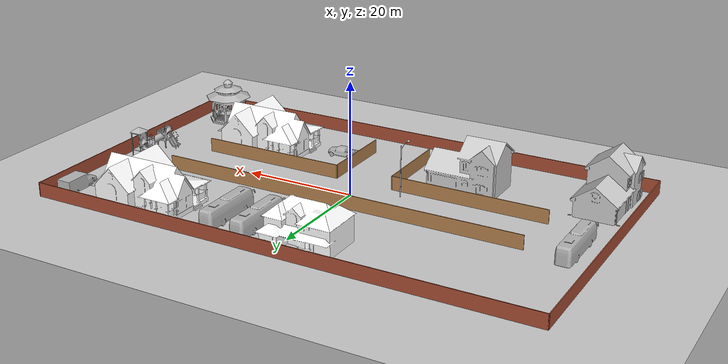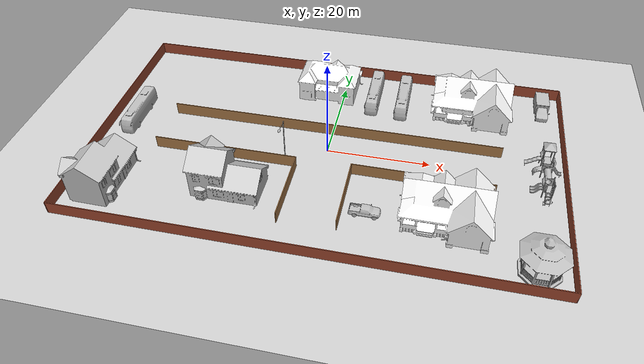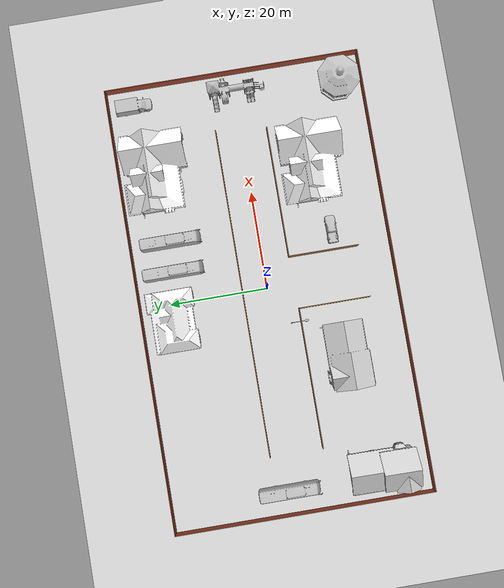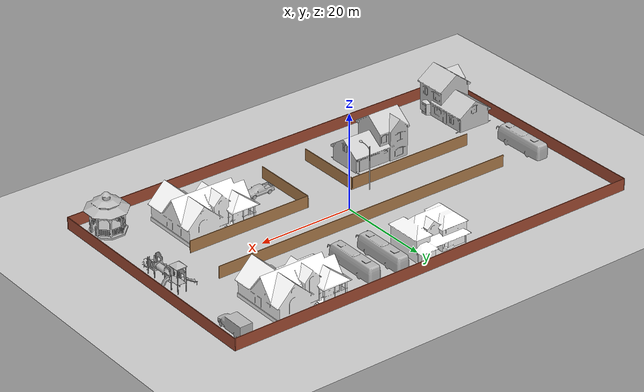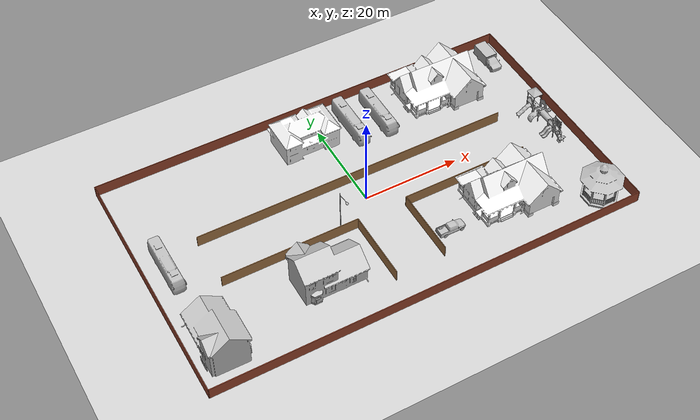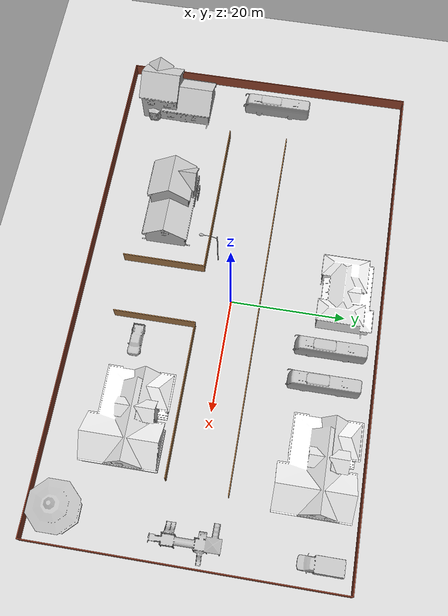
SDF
<sdf version="1.6">
 <world name="default">
  <light name="sun" type="directional">
   <pose>0 0 10 0 -0 0</pose>
   <diffuse>0.8 0.8 0.8 1</diffuse>
   <specular>0.2 0.2 0.2 1</specular>
   <attenuation>
    <range>1000</range>
    <constant>0.9</constant>
    <linear>0.01</linear>
    <quadratic>0.001</quadratic>
   </attenuation>
   <direction>-0.5 0.1 -0.9</direction>
  </light>
  <model name="ground_plane">
   <static>1</static>
   <link name="link">
    <collision name="collision">
     <geometry><plane><normal>0 0 1</normal><size>100 100</size></plane></geometry>
     <surface>
      <contact><collide_bitmask>65535</collide_bitmask></contact>
      <friction><ode><mu>100</mu><mu2>50</mu2></ode></friction>
     </surface>
    </collision>
    <visual name="visual">
     <cast_shadows>0</cast_shadows>
     <geometry><plane><normal>0 0 1</normal><size>100 100</size></plane></geometry>
     <material>
      <script><uri>file://media/materials/scripts/gazebo.material</uri><name>Gazebo/Grey</name></script>
     </material>
    </visual>
   </link>
  </model>
  <gravity>0 0 -9.8</gravity>
  <magnetic_field>6e-06 2.3e-05 -4.2e-05</magnetic_field>
  <atmosphere type="adiabatic"/>
  <physics name="default_physics" default="0" type="ode">
   <max_step_size>0.001</max_step_size>
   <real_time_factor>1</real_time_factor>
   <real_time_update_rate>1000</real_time_update_rate>
  </physics>
  <scene><ambient>0.4 0.4 0.4 1</ambient><background>0.7 0.7 0.7 1</background><shadows>1</shadows></scene>
  <spherical_coordinates>
   <surface_model>EARTH_WGS84</surface_model>
   <latitude_deg>0</latitude_deg>
   <longitude_deg>0</longitude_deg>
   <elevation>0</elevation>
   <heading_deg>0</heading_deg>
  </spherical_coordinates>
  <model name="city_walls">
   <link name="Wall_14">
    <collision name="Wall_14_Collision">
     <geometry><box><size>52.15 0.15 2.5</size></box></geometry>
     <pose>0 0 1.25 0 -0 0</pose>
    </collision>
    <visual name="Wall_14_Visual">
     <pose>0 0 1.25 0 -0 0</pose>
     <geometry><box><size>52.15 0.15 2.5</size></box></geometry>
     <material>
      <script><uri>file://media/materials/scripts/gazebo.material</uri><name>Gazebo/Bricks</name></script>
      <ambient>1 1 1 1</ambient>
     </material>
     <meta><layer>0</layer></meta>
    </visual>
    <pose>-45 0 0 0 0 -1.5708</pose>
   </link>
   <link name="Wall_16">
    <collision name="Wall_16_Collision">
     <geometry><box><size>90.15 0.15 2.5</size></box></geometry>
     <pose>0 0 1.25 0 -0 0</pose>
    </collision>
    <visual name="Wall_16_Visual">
     <pose>0 0 1.25 0 -0 0</pose>
     <geometry><box><size>90.15 0.15 2.5</size></box></geometry>
     <material>
      <script><uri>file://media/materials/scripts/gazebo.material</uri><name>Gazebo/Bricks</name></script>
      <ambient>1 1 1 1</ambient>
     </material>
     <meta><layer>0</layer></meta>
    </visual>
    <pose>0 26 0 0 -0 0</pose>
   </link>
   <link name="Wall_18">
    <collision name="Wall_18_Collision">
     <geometry><box><size>52.15 0.15 2.5</size></box></geometry>
     <pose>0 0 1.25 0 -0 0</pose>
    </collision>
    <visual name="Wall_18_Visual">
     <pose>0 0 1.25 0 -0 0</pose>
     <geometry><box><size>52.15 0.15 2.5</size></box></geometry>
     <material>
      <script><uri>file://media/materials/scripts/gazebo.material</uri><name>Gazebo/Bricks</name></script>
      <ambient>1 1 1 1</ambient>
     </material>
     <meta><layer>0</layer></meta>
    </visual>
    <pose>45 0 0 0 0 -1.5708</pose>
   </link>
   <link name="Wall_20">
    <collision name="Wall_20_Collision">
     <geometry><box><size>90.15 0.15 2.5</size></box></geometry>
     <pose>0 0 1.25 0 -0 0</pose>
    </collision>
    <visual name="Wall_20_Visual">
     <pose>0 0 1.25 0 -0 0</pose>
     <geometry><box><size>90.15 0.15 2.5</size></box></geometry>
     <material>
      <script><uri>file://media/materials/scripts/gazebo.material</uri><name>Gazebo/Bricks</name></script>
      <ambient>1 1 1 1</ambient>
     </material>
     <meta><layer>0</layer></meta>
    </visual>
    <pose>0 -26 0 0 -0 0</pose>
   </link>
   <link name="Wall_30">
    <collision name="Wall_30_Collision">
     <geometry><box><size>66.5 0.15 2.5</size></box></geometry>
     <pose>0 0 1.25 0 -0 0</pose>
    </collision>
    <visual name="Wall_30_Visual">
     <pose>0 0 1.25 0 -0 0</pose>
     <geometry><box><size>66.5 0.15 2.5</size></box></geometry>
     <material>
      <script><uri>file://media/materials/scripts/gazebo.material</uri><name>Gazebo/Wood</name></script>
      <ambient>1 1 1 1</ambient>
     </material>
     <meta><layer>0</layer></meta>
    </visual>
    <pose>0.126127 5.11102 0 0 -0 0</pose>
   </link>
   <link name="Wall_32">
    <collision name="Wall_32_Collision">
     <geometry><box><size>28.25 0.15 2.5</size></box></geometry>
     <pose>0 0 1.25 0 -0 0</pose>
    </collision>
    <visual name="Wall_32_Visual">
     <pose>0 0 1.25 0 -0 0</pose>
     <geometry><box><size>28.25 0.15 2.5</size></box></geometry>
     <material>
      <script><uri>file://media/materials/scripts/gazebo.material</uri><name>Gazebo/Wood</name></script>
      <ambient>1 1 1 1</ambient>
     </material>
     <meta><layer>0</layer></meta>
    </visual>
    <pose>-18.9989 -5.56281 0 0 -0 0</pose>
   </link>
   <link name="Wall_33">
    <collision name="Wall_33_Collision">
     <geometry><box><size>14.5 0.15 2.5</size></box></geometry>
     <pose>0 0 1.25 0 -0 0</pose>
    </collision>
    <visual name="Wall_33_Visual">
     <pose>0 0 1.25 0 -0 0</pose>
     <geometry><box><size>14.5 0.15 2.5</size></box></geometry>
     <material>
      <script><uri>file://media/materials/scripts/gazebo.material</uri><name>Gazebo/Wood</name></script>
      <ambient>1 1 1 1</ambient>
     </material>
     <meta><layer>0</layer></meta>
    </visual>
    <pose>-4.94887 -12.7378 0 0 0 -1.5708</pose>
   </link>
   <link name="Wall_35">
    <collision name="Wall_35_Collision">
     <geometry><box><size>14.25 0.15 2.5</size></box></geometry>
     <pose>0 0 1.25 0 -0 0</pose>
    </collision>
    <visual name="Wall_35_Visual">
     <pose>0 0 1.25 0 -0 0</pose>
     <geometry><box><size>14.25 0.15 2.5</size></box></geometry>
     <material>
      <script><uri>file://media/materials/scripts/gazebo.material</uri><name>Gazebo/Wood</name></script>
      <ambient>1 1 1 1</ambient>
     </material>
     <meta><layer>0</layer></meta>
    </visual>
    <pose>5.66155 -12.3176 0 0 -0 1.5708</pose>
   </link>
   <link name="Wall_36">
    <collision name="Wall_36_Collision">
     <geometry><box><size>26.75 0.15 2.5</size></box></geometry>
     <pose>0 0 1.25 0 -0 0</pose>
    </collision>
    <visual name="Wall_36_Visual">
     <pose>0 0 1.25 0 -0 0</pose>
     <geometry><box><size>26.75 0.15 2.5</size></box></geometry>
     <material>
      <script><uri>file://media/materials/scripts/gazebo.material</uri><name>Gazebo/Wood</name></script>
      <ambient>1 1 1 1</ambient>
     </material>
     <meta><layer>0</layer></meta>
    </visual>
    <pose>18.9615 -5.26763 0 0 -0 0</pose>
   </link>
   <static>1</static>
  </model>
  <model name="ambulance">
   <static>1</static>
   <link name="link">
    <collision name="collision">
     <geometry>
      <mesh><scale>0.0254 0.0254 0.0254</scale><uri>model://ambulance/meshes/ambulance.obj</uri></mesh>
     </geometry>
    </collision>
    <visual name="visual">
     <geometry>
      <mesh><scale>0.0254 0.0254 0.0254</scale><uri>model://ambulance/meshes/ambulance.obj</uri></mesh>
     </geometry>
    </visual>
   </link>
   <pose>41.2885 20.9196 0 0 -0 0</pose>
  </model>
  <model name="House 1">
   <static>1</static>
   <link name="link">
    <collision name="collision">
     <geometry><mesh><uri>model://house_1/meshes/house_1.dae</uri><scale>1.5 1.5 1.5</scale></mesh></geometry>
    </collision>
    <visual name="visual">
     <geometry><mesh><uri>model://house_1/meshes/house_1.dae</uri><scale>1.5 1.5 1.5</scale></mesh></geometry>
     <material>
      <script>
       <uri>model://house_1/materials/scripts</uri>
       <uri>model://house_1/materials/textures</uri>
       <name>House_1/Diffuse</name>
      </script>
      <shader type="normal_map_tangent_space"><normal_map>House_1_Normal.png</normal_map></shader>
     </material>
    </visual>
   </link>
   <pose>27.049 18.6944 0 0 -0 0</pose>
  </model>
  <model name="House 2">
   <static>1</static>
   <link name="link">
    <collision name="collision">
     <geometry><mesh><uri>model://house_2/meshes/house_2.dae</uri><scale>1.5 1.5 1.5</scale></mesh></geometry>
    </collision>
    <visual name="visual">
     <geometry><mesh><uri>model://house_2/meshes/house_2.dae</uri><scale>1.5 1.5 1.5</scale></mesh></geometry>
     <material>
      <script>
       <uri>model://house_2/materials/scripts</uri>
       <uri>model://house_2/materials/textures</uri>
       <uri>model://house_1/materials/textures</uri>
       <name>House_2/Diffuse</name>
      </script>
      <shader type="normal_map_tangent_space">
       <normal_map>model://house_1/materials/textures/House_1_Normal.png</normal_map>
      </shader>
     </material>
    </visual>
   </link>
   <pose>-4.38125 18.8963 0 0 -0 0</pose>
  </model>
  <model name="House 1_0">
   <static>1</static>
   <link name="link">
    <collision name="collision">
     <geometry><mesh><uri>model://house_1/meshes/house_1.dae</uri><scale>1.5 1.5 1.5</scale></mesh></geometry>
    </collision>
    <visual name="visual">
     <geometry><mesh><uri>model://house_1/meshes/house_1.dae</uri><scale>1.5 1.5 1.5</scale></mesh></geometry>
     <material>
      <script>
       <uri>model://house_1/materials/scripts</uri>
       <uri>model://house_1/materials/textures</uri>
       <name>House_1/Diffuse</name>
      </script>
      <shader type="normal_map_tangent_space"><normal_map>House_1_Normal.png</normal_map></shader>
     </material>
    </visual>
   </link>
   <pose>24.0205 -12.5671 0 0 -0 0</pose>
  </model>
  <model name="House 3">
   <static>1</static>
   <link name="link">
    <collision name="collision">
     <geometry><mesh><uri>model://house_3/meshes/house_3.dae</uri><scale>1.5 1.5 1.5</scale></mesh></geometry>
    </collision>
    <visual name="visual">
     <geometry><mesh><uri>model://house_3/meshes/house_3.dae</uri><scale>1.5 1.5 1.5</scale></mesh></geometry>
     <material>
      <script>
       <uri>model://house_3/materials/scripts</uri>
       <uri>model://house_3/materials/textures</uri>
       <uri>model://house_1/materials/textures</uri>
       <name>House_3/Diffuse</name>
      </script>
      <shader type="normal_map_tangent_space">
       <normal_map>model://house_1/materials/textures/House_1_Normal.png</normal_map>
      </shader>
     </material>
    </visual>
   </link>
   <pose>-15.107 -13.4414 0 0 -0 0</pose>
  </model>
  <model name="Lamp Post">
   <static>1</static>
   <link name="link">
    <collision name="collision">
     <geometry><mesh><uri>model://lamp_post/meshes/lamp_post.dae</uri><scale>3 3 3</scale></mesh></geometry>
    </collision>
    <visual name="visual">
     <geometry><mesh><uri>model://lamp_post/meshes/lamp_post.dae</uri><scale>3 3 3</scale></mesh></geometry>
    </visual>
   </link>
   <pose>-7.61086 -3.58522 0 0 -0 0</pose>
  </model>
  <model name="playground">
   <static>1</static>
   <link name="link">
    <collision name="collision">
     <geometry><mesh><uri>model://playground/meshes/playground.dae</uri></mesh></geometry>
    </collision>
    <visual name="visual">
     <geometry><mesh><uri>model://playground/meshes/playground.dae</uri></mesh></geometry>
    </visual>
   </link>
   <pose>40.9649 -0.433982 0 0 0 -1.56469</pose>
  </model>
  <model name="gazebo">
   <static>1</static>
   <link name="link">
    <collision name="collision">
     <geometry><mesh><scale>3 3 2.5</scale><uri>model://gazebo/meshes/gazebo.dae</uri></mesh></geometry>
    </collision>
    <visual name="visual">
     <geometry><mesh><scale>3 3 2.5</scale><uri>model://gazebo/meshes/gazebo.dae</uri></mesh></geometry>
    </visual>
   </link>
   <pose>39.5638 -21.1344 0 0 -0 0</pose>
  </model>
  <model name="bus">
   <static>1</static>
   <link name="link">
    <collision name="collision">
     <geometry><mesh><scale>0.01 0.01 0.01</scale><uri>model://bus/meshes/bus.obj</uri></mesh></geometry>
    </collision>
    <visual name="visual">
     <geometry><mesh><scale>0.01 0.01 0.01</scale><uri>model://bus/meshes/bus.obj</uri></mesh></geometry>
    </visual>
   </link>
   <pose>12.7019 17.6801 0 0 -0 0</pose>
  </model>
  <model name="bus_0">
   <static>1</static>
   <link name="link">
    <collision name="collision">
     <geometry><mesh><scale>0.01 0.01 0.01</scale><uri>model://bus/meshes/bus.obj</uri></mesh></geometry>
    </collision>
    <visual name="visual">
     <geometry><mesh><scale>0.01 0.01 0.01</scale><uri>model://bus/meshes/bus.obj</uri></mesh></geometry>
    </visual>
   </link>
   <pose>6.5472 18.0865 0 0 -0 0</pose>
  </model>
  <model name="House 3_clone">
   <static>1</static>
   <link name="link">
    <collision name="collision">
     <geometry><mesh><uri>model://house_3/meshes/house_3.dae</uri><scale>1.5 1.5 1.5</scale></mesh></geometry>
    </collision>
    <visual name="visual">
     <geometry><mesh><uri>model://house_3/meshes/house_3.dae</uri><scale>1.5 1.5 1.5</scale></mesh></geometry>
     <material>
      <script>
       <uri>model://house_3/materials/scripts</uri>
       <uri>model://house_3/materials/textures</uri>
       <uri>model://house_1/materials/textures</uri>
       <name>House_3/Diffuse</name>
      </script>
      <shader type="normal_map_tangent_space">
       <normal_map>model://house_1/materials/textures/House_1_Normal.png</normal_map>
      </shader>
     </material>
    </visual>
   </link>
   <pose>-38.9517 -15.9217 0 0 -0 1.56164</pose>
  </model>
  <model name="bus_0_clone">
   <static>1</static>
   <link name="link">
    <collision name="collision">
     <geometry><mesh><scale>0.01 0.01 0.01</scale><uri>model://bus/meshes/bus.obj</uri></mesh></geometry>
    </collision>
    <visual name="visual">
     <geometry><mesh><scale>0.01 0.01 0.01</scale><uri>model://bus/meshes/bus.obj</uri></mesh></geometry>
    </visual>
   </link>
   <pose>-40.3865 2.32137 0 0 -0 0</pose>
  </model>
  <model name="pickup">
   <static>1</static>
   <link name="link">
    <collision name="collision">
     <pose>0 0 0 0 0 -1.5708</pose>
     <geometry><mesh><uri>model://pickup/meshes/pickup.dae</uri></mesh></geometry>
    </collision>
    <visual name="visual">
     <pose>0 0 0 0 0 -1.5708</pose>
     <geometry><mesh><uri>model://pickup/meshes/pickup.dae</uri></mesh></geometry>
    </visual>
   </link>
   <pose>9.94207 -14.7724 0 0 -0 0</pose>
  </model>
  <plugin filename="libcollision_map_creator.so" name="collision_map_creator"/>
 </world>
</sdf>
